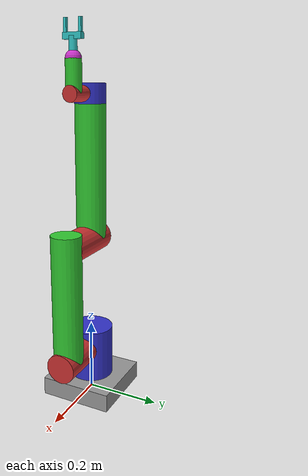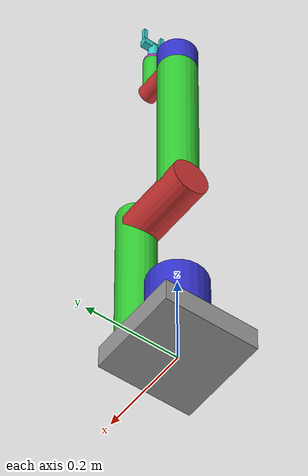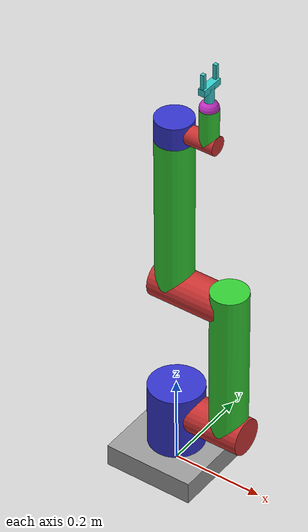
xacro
<?xml version="1.0"?>
<robot xmlns:xacro="http://www.ros.org/wiki/xacro" name="robot_arm">
    <xacro:arg name="initial_positions_file" default="initial_positions.yaml" />
    <!-- Set to true when launching in Gazebo (see gazebo.launch.py). Leave false for the RViz demo. -->
    <xacro:arg name="use_gazebo" default="false" />

    <!-- Import robot_arm urdf file -->
    <xacro:include filename="$(find bin_nodes)/urdf/robot.urdf" />

    <!-- Import control_xacro -->
    <xacro:include filename="robot_arm.ros2_control.xacro" />

    <xacro:robot_arm_ros2_control name="FakeSystem" initial_positions_file="$(arg initial_positions_file)" use_gazebo="$(arg use_gazebo)"/>

    <!-- Gazebo-only: anchor the base to the world frame and load the ros2_control plugin. -->
    <xacro:if value="$(arg use_gazebo)">
        <link name="world"/>
        <joint name="world_fixed" type="fixed">
            <parent link="world"/>
            <child link="robot_base"/>
        </joint>

        <gazebo>
            <plugin filename="libgazebo_ros2_control.so" name="gazebo_ros2_control">
                <parameters>$(find moveit_config)/config/ros2_controllers.yaml</parameters>
            </plugin>
        </gazebo>
    </xacro:if>

</robot>

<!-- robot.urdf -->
<robot name="robot_arm">

    <link name="robot_base">
        <inertial>
            <origin xyz="0 0 0.025" rpy="0 0 0"/>
            <mass value="2.0"/>
            <inertia ixx="0.007083" ixy="0" ixz="0" iyy="0.007083" iyz="0" izz="0.013333"/>
        </inertial>
        <visual>
            <origin xyz="0 0 0.025" rpy="0 0 0"/>
            <geometry>
                <box size="0.2 0.2 0.05"/>
            </geometry>
            <material name="grey">
                <color rgba="0.6 0.6 0.6 1.0"/>
            </material>
        </visual>
        <collision>
            <origin xyz="0 0 0.025" rpy="0 0 0"/>
            <geometry>
                <box size="0.18 0.18 0.04"/>
            </geometry>
        </collision>
    </link>

    <link name="waist_link">
        <inertial>
            <origin xyz="0 0 0" rpy="0 0 0"/>
            <mass value="1.0"/>
            <inertia ixx="0.002775" ixy="0" ixz="0" iyy="0.002775" iyz="0" izz="0.0018"/>
        </inertial>
        <visual>
            <geometry>
                <cylinder radius="0.06" length="0.15"/>
            </geometry>
            <material name="blue">
                <color rgba="0.2 0.2 0.8 1.0"/>
            </material>
        </visual>
        <collision>
            <origin xyz="0 0 0" rpy="0 0 0"/>
            <geometry>
                <box size="0.09 0.09 0.13"/>
            </geometry>
        </collision>
    </link>

    <joint name="j1_waist" type="revolute">
        <parent link="robot_base"/>
        <child link="waist_link"/>
        <origin xyz="0 0 0.12" rpy="0 0 0"/>
        <axis xyz="0 0 1"/>
        <limit lower="-3.14159" upper="3.14159" effort="100.0" velocity="1.0"/>
    </joint>

    <link name="shoulder_link">
        <inertial>
            <origin xyz="0 0 0" rpy="1.5708 0 1.5708"/>
            <mass value="0.5"/>
            <inertia ixx="0.0010167" ixy="0" ixz="0" iyy="0.0010167" iyz="0" izz="0.0004"/>
        </inertial>
        <visual>
            <origin xyz="0 0 0" rpy="1.5708 0 1.5708"/>
            <geometry>
                <cylinder radius="0.04" length="0.14"/>
            </geometry>
            <material name="red">
                <color rgba="0.8 0.2 0.2 1.0"/>
            </material>
        </visual>
        <collision>
            <origin xyz="0 0 0" rpy="1.5708 0 1.5708"/>
            <geometry>
                <box size="0.06 0.06 0.12"/>
            </geometry>
        </collision>
    </link>

    <joint name="j2_shoulder" type="revolute">
        <parent link="waist_link"/>
        <child link="shoulder_link"/>
        <origin xyz="0.10 0 0.02" rpy="0 0 0"/>
        <axis xyz="1 0 0"/>
        <limit lower="-3.14159" upper="3.14159" effort="100.0" velocity="1.0"/>
    </joint>

    <link name="shoulder_arm">
        <inertial>
            <origin xyz="0 0 0" rpy="0 0 0"/>
            <mass value="0.8"/>
            <inertia ixx="0.008487" ixy="0" ixz="0" iyy="0.008487" iyz="0" izz="0.00064"/>
        </inertial>
        <visual>
            <origin xyz="0 0 0" rpy="0 0 0"/>
            <geometry>
                <cylinder radius="0.04" length="0.35"/>
            </geometry>
            <material name="green">
                <color rgba="0.2 0.8 0.2 1.0"/>
            </material>
        </visual>
        <collision>
            <origin xyz="0 0 0" rpy="0 0 0"/>
            <geometry>
                <box size="0.06 0.06 0.31"/>
            </geometry>
        </collision>
    </link>

    <joint name="a1_shoulder" type="fixed">
        <parent link="shoulder_link"/>
        <child link="shoulder_arm"/>
        <origin xyz="0.027 0 0.18" rpy="0 0 0"/>
    </joint>

    <link name="elbow_link">
        <inertial>
            <origin xyz="0 0 0" rpy="1.5708 0 1.5708"/>
            <mass value="0.5"/>
            <inertia ixx="0.0012667" ixy="0" ixz="0" iyy="0.0012667" iyz="0" izz="0.0004"/>
        </inertial>
        <visual>
            <origin xyz="0 0 0" rpy="1.5708 0 1.5708"/>
            <geometry>
                <cylinder radius="0.04" length="0.16"/>
            </geometry>
            <material name="red">
                <color rgba="0.8 0.2 0.2 1.0"/>
            </material>
        </visual>
        <collision>
            <origin xyz="0 0 0" rpy="1.5708 0 1.5708"/>
            <geometry>
                <box size="0.06 0.06 0.14"/>
            </geometry>
        </collision>
    </link>

    <joint name="j3_elbow" type="revolute">
        <parent link="shoulder_arm"/>
        <child link="elbow_link"/>
        <origin xyz="-0.09 0 0.134" rpy="0 0 0"/>
        <axis xyz="1 0 0"/>
        <limit lower="-3.14159" upper="3.14159" effort="100.0" velocity="1.0"/>
    </joint>

    <link name="elbow_arm">
        <inertial>
            <origin xyz="0 0 0" rpy="0 0 0"/>
            <mass value="0.8"/>
            <inertia ixx="0.008487" ixy="0" ixz="0" iyy="0.008487" iyz="0" izz="0.00064"/>
        </inertial>
        <visual>
            <geometry>
                <cylinder radius="0.04" length="0.35"/>
            </geometry>
            <material name="green">
                <color rgba="0.2 0.8 0.2 1.0"/>
            </material>
        </visual>
        <collision>
            <origin xyz="0 0 0" rpy="0 0 0"/>
            <geometry>
                <box size="0.06 0.06 0.31"/>
            </geometry>
        </collision>
    </link>

     <joint name="a2_elbow" type="fixed">
        <parent link="elbow_link"/>
        <child link="elbow_arm"/>
        <origin xyz="-0.04 0 0.18" rpy="0 0 0"/>
    </joint>

    <link name="wrist_link">
        <inertial>
            <origin xyz="0 0 0" rpy="0 0 0"/>
            <mass value="0.3"/>
            <inertia ixx="0.0001825" ixy="0" ixz="0" iyy="0.0001825" iyz="0" izz="0.00024"/>
        </inertial>
        <visual>
            <geometry>
                <cylinder radius="0.04" length="0.05"/>
            </geometry>
            <material name="blue">
                <color rgba="0.2 0.2 0.8 1.0"/>
            </material>
        </visual>
        <collision>
            <origin xyz="0 0 0" rpy="0 0 0"/>
            <geometry>
                <box size="0.06 0.06 0.04"/>
            </geometry>
        </collision>
    </link>

    <joint name="j4_wrist" type="revolute">
        <parent link="elbow_arm"/>
        <child link="wrist_link"/>
        <origin xyz="0 0 0.2" rpy="0 0 0"/>
        <axis xyz="0 0 1"/>
        <limit lower="-3.14159" upper="3.14159" effort="100.0" velocity="1.0"/>
    </joint>

    <link name="wrist_pitch_link">
        <inertial>
            <origin xyz="0 0 0" rpy="1.5708 0 1.5708"/>
            <mass value="0.2"/>
            <inertia ixx="0.00012667" ixy="0" ixz="0" iyy="0.00012667" iyz="0" izz="0.00004"/>
        </inertial>
        <visual>
            <origin xyz="0 0 0" rpy="1.5708 0 1.5708"/>
            <geometry>
                <cylinder radius="0.02" length="0.08"/>
            </geometry>
            <material name="red">
                <color rgba="0.8 0.2 0.2 1.0"/>
            </material>
        </visual>
        <collision>
            <origin xyz="0 0 0" rpy="1.5708 0 1.5708"/>
            <geometry>
                <box size="0.03 0.03 0.04"/>
            </geometry>
        </collision>
    </link>

    <joint name="j5_wrist" type="revolute">
        <parent link="wrist_link"/>
        <child link="wrist_pitch_link"/>
        <origin xyz="0.06 0 0" rpy="0 0 0"/>
        <axis xyz="1 0 0"/>
        <limit lower="-3.14159" upper="3.14159" effort="100.0" velocity="1.0"/>
    </joint>

    <link name="wrist_arm">
        <inertial>
            <origin xyz="0 0 0" rpy="0 0 0"/>
            <mass value="0.2"/>
            <inertia ixx="0.00012667" ixy="0" ixz="0" iyy="0.00012667" iyz="0" izz="0.00004"/>
        </inertial>
        <visual>
            <geometry>
                <cylinder radius="0.02" length="0.08"/>
            </geometry>
            <material name="green">
                <color rgba="0.2 0.8 0.2 1.0"/>
            </material>
        </visual>
        <collision>
            <origin xyz="0 0 0" rpy="0 0 0"/>
            <geometry>
                <box size="0.03 0.03 0.05"/>
            </geometry>
        </collision>
    </link>

     <joint name="a3_wrist" type="fixed">
        <parent link="wrist_pitch_link"/>
        <child link="wrist_arm"/>
        <origin xyz="0.02 0 0.04" rpy="0 0 0"/>
    </joint>

     <link name="wrist_yaw_link">
        <inertial>
            <origin xyz="0 0 0" rpy="0 0 0"/>
            <mass value="0.1"/>
            <inertia ixx="0.000016" ixy="0" ixz="0" iyy="0.000016" iyz="0" izz="0.000016"/>
        </inertial>
        <visual>
            <geometry>
                <sphere radius="0.02"/>
            </geometry>
            <material name="purpel">
                <color rgba="0.8 0.2 0.8 1.0"/>
            </material>
        </visual>
        <collision>
            <geometry>
                <sphere radius="0.015"/>
            </geometry>
        </collision>
    </link>

    <joint name="j6_wrist" type="revolute">
        <parent link="wrist_arm"/>
        <child link="wrist_yaw_link"/>
        <origin xyz="0 0 0.04" rpy="0 0 0"/>
        <axis xyz="0 1 0"/>
        <limit lower="-1.54159" upper="1.54159" effort="100.0" velocity="1.0"/>
    </joint>

    <!-- tool -->

    <link name="tool_link">
        <inertial>
            <origin xyz="0 0 0" rpy="0 0 0"/>
            <mass value="0.05"/>
            <inertia ixx="0.00000792" ixy="0" ixz="0" iyy="0.00000792" iyz="0" izz="0.0000025"/>
        </inertial>
        <visual>
            <geometry>
                <cylinder radius="0.01" length="0.04"/>
            </geometry>
            <material name="else">
                <color rgba="0.2 0.8 0.8 1.0"/>
            </material>
        </visual>
        <collision>
            <origin xyz="0 0 0" rpy="0 0 0"/>
            <geometry>
                <box size="0.015 0.015 0.03"/>
            </geometry>
        </collision>
    </link>

    <joint name="tool_joint" type="fixed">
        <parent link="wrist_yaw_link"/>
        <child link="tool_link"/>
        <origin xyz="0 0 0.03" rpy="0 0 0"/>
    </joint>

     <link name="gripper_link">
        <inertial>
            <origin xyz="0 0 0" rpy="1.5708 0 0"/>
            <mass value="0.05"/>
            <inertia ixx="0.00001135" ixy="0" ixz="0" iyy="0.00001135" iyz="0" izz="0.000001875"/>
        </inertial>
        <visual>
            <origin xyz="0 0 0" rpy="1.5708 0 0"/>
            <geometry>
                <box size="0.015 0.015 0.05"/>
            </geometry>
            <material name="else">
                <color rgba="0.2 0.8 0.8 1.0"/>
            </material>
        </visual>
        <collision>
            <origin xyz="0 0 0" rpy="1.5708 0 0"/>
            <geometry>
                <box size="0.015 0.015 0.03"/>
            </geometry>
        </collision>
    </link>

    <joint name="gripper_joint" type="fixed">
        <parent link="tool_link"/>
        <child link="gripper_link"/>
        <origin xyz="0 0 0.02" rpy="0 0 0"/>
    </joint>

    <link name="gripperfinger_left_link">
        <inertial>
            <origin xyz="0 0 0" rpy="0 0 0"/>
            <mass value="0.02"/>
            <inertia ixx="0.00000276" ixy="0" ixz="0" iyy="0.00000276" iyz="0" izz="0.0000001875"/>
        </inertial>
        <visual>
            <geometry>
                <box size="0.0075 0.0075 0.04"/>
            </geometry>
            <material name="else">
                <color rgba="0.2 0.8 0.8 1.0"/>
            </material>
        </visual>
        <collision>
            <geometry>
                <box size="0.0075 0.0075 0.04"/>
            </geometry>
        </collision>
    </link>

    <link name="gripperfinger_right_link">
        <inertial>
            <origin xyz="0 0 0" rpy="0 0 0"/>
            <mass value="0.02"/>
            <inertia ixx="0.00000276" ixy="0" ixz="0" iyy="0.00000276" iyz="0" izz="0.0000001875"/>
        </inertial>
        <visual>
            <geometry>
                <box size="0.0075 0.0075 0.04"/>
            </geometry>
            <material name="else">
                <color rgba="0.2 0.8 0.8 1.0"/>
            </material>
        </visual>
        <collision>
            <geometry>
                <box size="0.0075 0.0075 0.04"/>
            </geometry>
        </collision>
    </link>

    <joint name="gripperfinger_left_joint" type="prismatic">
        <parent link="gripper_link"/>
        <child link="gripperfinger_left_link"/>
        <origin xyz="0 0.02 0.02" rpy="0 0 0"/>
        <axis xyz="0 -1 0"/>
        <limit lower="0" upper="0.02" effort="100.0" velocity="1.0"/>
    </joint>

    <joint name="gripperfinger_right_joint" type="prismatic">
        <parent link="gripper_link"/>
        <child link="gripperfinger_right_link"/>
        <origin xyz="0 -0.02 0.02" rpy="0 0 0"/>
        <axis xyz="0 1 0"/>
        <limit lower="0" upper="0.02" effort="100.0" velocity="1.0"/>
    </joint>

</robot>
